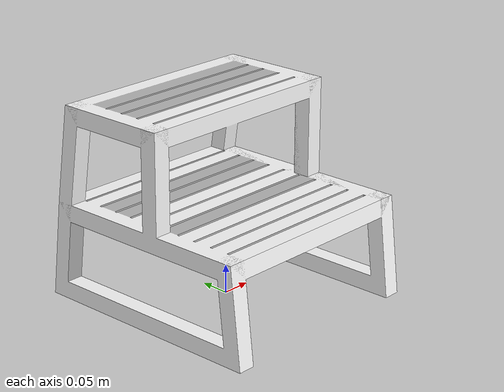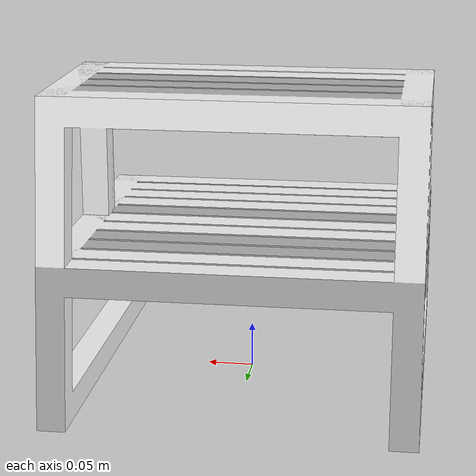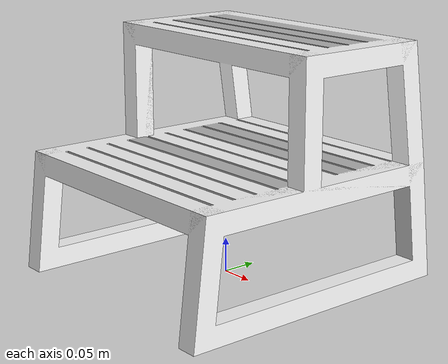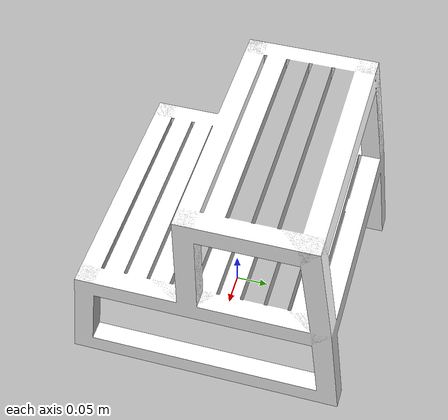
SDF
<sdf version="1.4">
  <model name="ikea stool">
    <static>1</static>
    <link name="link">
      <collision name="colision">
        <pose>0 0 0 0 0 0</pose>
        <geometry>
          <mesh>
            <uri>model://ikea_stool/meshes/ikea_stool.min.dae</uri>
            <scale> 1 1 1 </scale>
          </mesh>
        </geometry>
        <surface>
          <bounce />
          <friction>
            <ode />
          </friction>
          <contact>
            <ode />
          </contact>
        </surface>
      </collision>

      <visual name="visual">
        <pose>0 0 0 0 0 0</pose>
        <geometry>
          <mesh>
            <uri>model://ikea_stool/meshes/ikea_stool.dae</uri>
            <scale> 1 1 1 </scale>
          </mesh>
        </geometry>
      </visual>

      <velocity_decay>
        <linear>0.000000</linear>
        <angular>0.000000</angular>
      </velocity_decay>
      <self_collide>0</self_collide>
      <kinematic>0</kinematic>
      <gravity>1</gravity>
    </link>
  </model>
</sdf>
